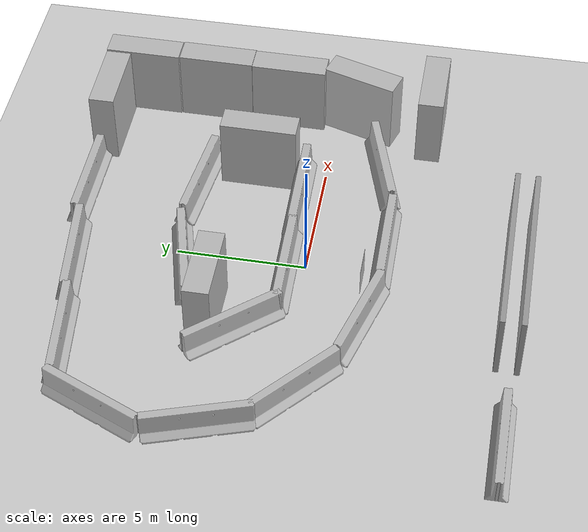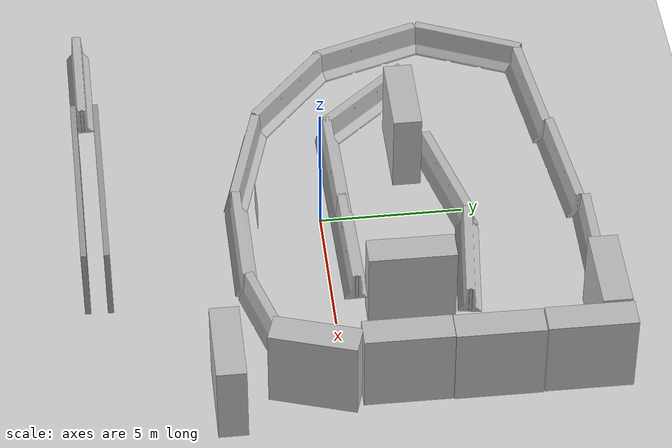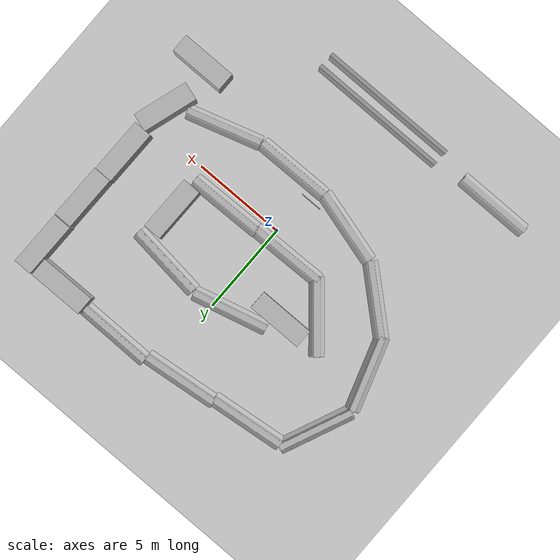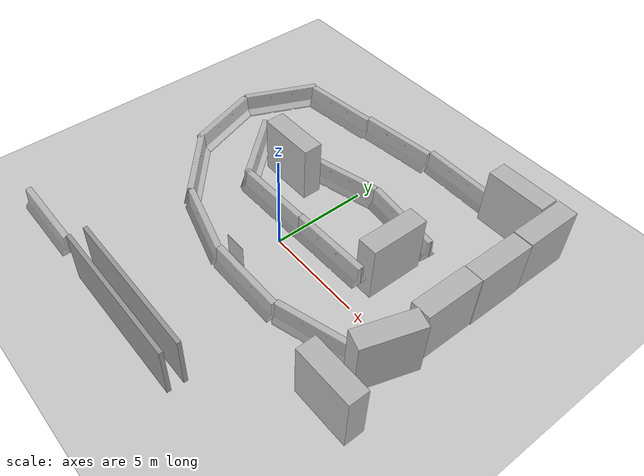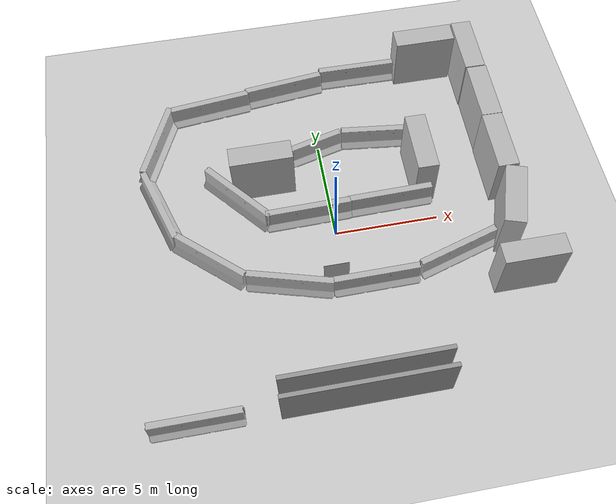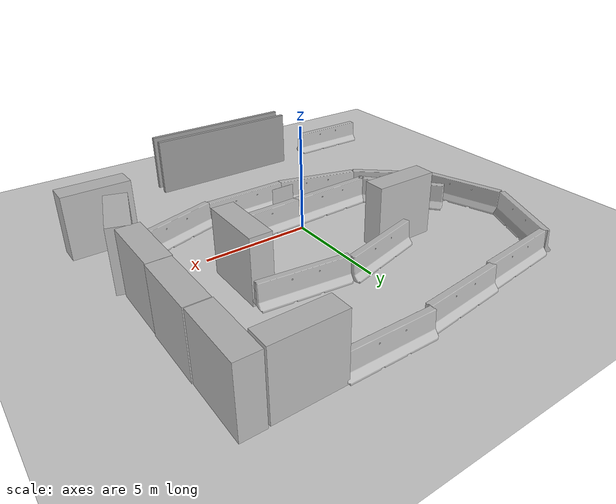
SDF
<sdf version="1.7">
 <world name="default">
  <light name="sun" type="directional">
   <pose>0 0 10 0 -0 0</pose>
   <diffuse>0.8 0.8 0.8 1</diffuse>
   <specular>0.2 0.2 0.2 1</specular>
   <attenuation>
    <range>1000</range>
    <constant>0.9</constant>
    <linear>0.01</linear>
    <quadratic>0.001</quadratic>
   </attenuation>
   <direction>-0.5 0.1 -0.9</direction>
   <spot><inner_angle>0</inner_angle><outer_angle>0</outer_angle><falloff>0</falloff></spot>
  </light>
  <model name="ground_plane">
   <static>1</static>
   <link name="link">
    <collision name="collision">
     <geometry><plane><normal>0 0 1</normal><size>100 100</size></plane></geometry>
     <surface>
      <contact><collide_bitmask>65535</collide_bitmask></contact>
      <friction><ode><mu>100</mu><mu2>50</mu2></ode></friction>
     </surface>
    </collision>
    <visual name="visual">
     <cast_shadows>0</cast_shadows>
     <geometry><plane><normal>0 0 1</normal><size>100 100</size></plane></geometry>
     <material>
      <script><uri>file://media/materials/scripts/gazebo.material</uri><name>Gazebo/Grey</name></script>
     </material>
    </visual>
   </link>
  </model>
  <gravity>0 0 -9.8</gravity>
  <magnetic_field>6e-06 2.3e-05 -4.2e-05</magnetic_field>
  <atmosphere type="adiabatic"/>
  <physics type="ode">
   <max_step_size>0.001</max_step_size>
   <real_time_factor>1</real_time_factor>
   <real_time_update_rate>1000</real_time_update_rate>
  </physics>
  <scene><ambient>0.4 0.4 0.4 1</ambient><background>0.7 0.7 0.7 1</background><shadows>1</shadows></scene>
  <spherical_coordinates>
   <surface_model>EARTH_WGS84</surface_model>
   <latitude_deg>0</latitude_deg>
   <longitude_deg>0</longitude_deg>
   <elevation>0</elevation>
   <heading_deg>0</heading_deg>
  </spherical_coordinates>
  <model name="grey_wall">
   <static>1</static>
   <link name="link">
    <pose>0 0 1.4 0 -0 0</pose>
    <collision name="collision"><geometry><box><size>7.5 0.2 2.8</size></box></geometry></collision>
    <visual name="visual">
     <cast_shadows>0</cast_shadows>
     <geometry><box><size>7.5 0.2 2.8</size></box></geometry>
     <material>
      <script>
       <uri>model://grey_wall/materials/scripts</uri>
       <uri>model://grey_wall/materials/textures</uri>
       <name>vrc/grey_wall</name>
      </script>
     </material>
    </visual>
   </link>
   <pose>-0.137893 -8.35678 0 0 -0 0</pose>
  </model>
  <model name="nist_maze_wall_120">
   <static>1</static>
   <link name="nist_maze_wall_120_link">
    <collision name="collision">
     <geometry>
      <mesh><uri>model://nist_maze_wall_120/meshes/nist_maze_wall_120.dae</uri><scale>1 1 1</scale></mesh>
     </geometry>
    </collision>
    <visual name="visual">
     <geometry>
      <mesh><uri>model://nist_maze_wall_120/meshes/nist_maze_wall_120.dae</uri><scale>1 1 1</scale></mesh>
     </geometry>
    </visual>
   </link>
   <pose>-0.370379 -2.82162 0 0 -0 0</pose>
  </model>
  <model name="brick_box_3x1x3">
   <static>1</static>
   <link name="chassis">
    <pose>0 0 1.5 0 -0 0</pose>
    <collision name="collision"><geometry><box><size>3 1 3</size></box></geometry></collision>
    <visual name="visual">
     <geometry><mesh><uri>model://brick_box_3x1x3/meshes/simple_box.dae</uri><scale>3 1 3</scale></mesh></geometry>
     <material>
      <script>
       <uri>model://brick_box_3x1x3/materials/scripts</uri>
       <uri>model://brick_box_3x1x3/materials/textures</uri>
       <name>BrickBox/Diffuse</name>
      </script>
     </material>
    </visual>
   </link>
   <pose>8.1491 -3.89878 0 0 -0 0</pose>
  </model>
  <model name="jersey_barrier">
   <static>1</static>
   <link name="link">
    <visual name="visual">
     <geometry><mesh><uri>model://jersey_barrier/meshes/jersey_barrier.dae</uri></mesh></geometry>
    </visual>
    <collision name="upright">
     <pose>0 0 0.5715 0 -0 0</pose>
     <geometry><box><size>4.06542 0.3063 1.143</size></box></geometry>
    </collision>
    <collision name="base">
     <pose>0 0 0.032258 0 -0 0</pose>
     <geometry><box><size>4.06542 0.8107 0.064516</size></box></geometry>
    </collision>
    <collision name="base2">
     <pose>0 0 0.1 0 -0 0</pose>
     <geometry><box><size>4.06542 0.65 0.1</size></box></geometry>
    </collision>
    <collision name="base3">
     <pose>0 0 0.2 0 -0 0</pose>
     <geometry><box><size>4.06542 0.5 0.1</size></box></geometry>
    </collision>
    <collision name="left-angle">
     <pose>0 -0.224 0.2401 0.9 -0 0</pose>
     <geometry><box><size>4.06542 0.5 0.064516</size></box></geometry>
    </collision>
    <collision name="right-angle">
     <pose>0 0.224 0.2401 -0.9 0 0</pose>
     <geometry><box><size>4.06542 0.5 0.064516</size></box></geometry>
    </collision>
   </link>
   <pose>-7.42941 -8.07411 0 0 -0 0</pose>
  </model>
  <model name="grey_wall_clone">
   <static>1</static>
   <link name="link">
    <pose>0 0 1.4 0 -0 0</pose>
    <collision name="collision"><geometry><box><size>7.5 0.2 2.8</size></box></geometry></collision>
    <visual name="visual">
     <cast_shadows>0</cast_shadows>
     <geometry><box><size>7.5 0.2 2.8</size></box></geometry>
     <material>
      <script>
       <uri>model://grey_wall/materials/scripts</uri>
       <uri>model://grey_wall/materials/textures</uri>
       <name>vrc/grey_wall</name>
      </script>
     </material>
    </visual>
   </link>
   <pose>-0.108574 -7.58211 0 0 -0 0</pose>
  </model>
  <model name="jersey_barrier_clone">
   <static>1</static>
   <link name="link">
    <visual name="visual">
     <geometry><mesh><uri>model://jersey_barrier/meshes/jersey_barrier.dae</uri></mesh></geometry>
    </visual>
    <collision name="upright">
     <pose>0 0 0.5715 0 -0 0</pose>
     <geometry><box><size>4.06542 0.3063 1.143</size></box></geometry>
    </collision>
    <collision name="base">
     <pose>0 0 0.032258 0 -0 0</pose>
     <geometry><box><size>4.06542 0.8107 0.064516</size></box></geometry>
    </collision>
    <collision name="base2">
     <pose>0 0 0.1 0 -0 0</pose>
     <geometry><box><size>4.06542 0.65 0.1</size></box></geometry>
    </collision>
    <collision name="base3">
     <pose>0 0 0.2 0 -0 0</pose>
     <geometry><box><size>4.06542 0.5 0.1</size></box></geometry>
    </collision>
    <collision name="left-angle">
     <pose>0 -0.224 0.2401 0.9 -0 0</pose>
     <geometry><box><size>4.06542 0.5 0.064516</size></box></geometry>
    </collision>
    <collision name="right-angle">
     <pose>0 0.224 0.2401 -0.9 0 0</pose>
     <geometry><box><size>4.06542 0.5 0.064516</size></box></geometry>
    </collision>
   </link>
   <pose>-6.07933 -0.567885 0 0 0 -0.723427</pose>
  </model>
  <model name="jersey_barrier_clone_0">
   <static>1</static>
   <link name="link">
    <visual name="visual">
     <geometry><mesh><uri>model://jersey_barrier/meshes/jersey_barrier.dae</uri></mesh></geometry>
    </visual>
    <collision name="upright">
     <pose>0 0 0.5715 0 -0 0</pose>
     <geometry><box><size>4.06542 0.3063 1.143</size></box></geometry>
    </collision>
    <collision name="base">
     <pose>0 0 0.032258 0 -0 0</pose>
     <geometry><box><size>4.06542 0.8107 0.064516</size></box></geometry>
    </collision>
    <collision name="base2">
     <pose>0 0 0.1 0 -0 0</pose>
     <geometry><box><size>4.06542 0.65 0.1</size></box></geometry>
    </collision>
    <collision name="base3">
     <pose>0 0 0.2 0 -0 0</pose>
     <geometry><box><size>4.06542 0.5 0.1</size></box></geometry>
    </collision>
    <collision name="left-angle">
     <pose>0 -0.224 0.2401 0.9 -0 0</pose>
     <geometry><box><size>4.06542 0.5 0.064516</size></box></geometry>
    </collision>
    <collision name="right-angle">
     <pose>0 0.224 0.2401 -0.9 0 0</pose>
     <geometry><box><size>4.06542 0.5 0.064516</size></box></geometry>
    </collision>
   </link>
   <pose>-4.31599 1.97803 0.852106 0 0 -0.863777</pose>
  </model>
  <model name="jersey_barrier_clone_clone">
   <static>1</static>
   <link name="link">
    <visual name="visual">
     <geometry><mesh><uri>model://jersey_barrier/meshes/jersey_barrier.dae</uri></mesh></geometry>
    </visual>
    <collision name="upright">
     <pose>0 0 0.5715 0 -0 0</pose>
     <geometry><box><size>4.06542 0.3063 1.143</size></box></geometry>
    </collision>
    <collision name="base">
     <pose>0 0 0.032258 0 -0 0</pose>
     <geometry><box><size>4.06542 0.8107 0.064516</size></box></geometry>
    </collision>
    <collision name="base2">
     <pose>0 0 0.1 0 -0 0</pose>
     <geometry><box><size>4.06542 0.65 0.1</size></box></geometry>
    </collision>
    <collision name="base3">
     <pose>0 0 0.2 0 -0 0</pose>
     <geometry><box><size>4.06542 0.5 0.1</size></box></geometry>
    </collision>
    <collision name="left-angle">
     <pose>0 -0.224 0.2401 0.9 -0 0</pose>
     <geometry><box><size>4.06542 0.5 0.064516</size></box></geometry>
    </collision>
    <collision name="right-angle">
     <pose>0 0.224 0.2401 -0.9 0 0</pose>
     <geometry><box><size>4.06542 0.5 0.064516</size></box></geometry>
    </collision>
   </link>
   <pose>1.37527 -2.90407 0 0 -0 0.007967</pose>
  </model>
  <model name="jersey_barrier_clone_clone_0">
   <static>1</static>
   <link name="link">
    <visual name="visual">
     <geometry><mesh><uri>model://jersey_barrier/meshes/jersey_barrier.dae</uri></mesh></geometry>
    </visual>
    <collision name="upright">
     <pose>0 0 0.5715 0 -0 0</pose>
     <geometry><box><size>4.06542 0.3063 1.143</size></box></geometry>
    </collision>
    <collision name="base">
     <pose>0 0 0.032258 0 -0 0</pose>
     <geometry><box><size>4.06542 0.8107 0.064516</size></box></geometry>
    </collision>
    <collision name="base2">
     <pose>0 0 0.1 0 -0 0</pose>
     <geometry><box><size>4.06542 0.65 0.1</size></box></geometry>
    </collision>
    <collision name="base3">
     <pose>0 0 0.2 0 -0 0</pose>
     <geometry><box><size>4.06542 0.5 0.1</size></box></geometry>
    </collision>
    <collision name="left-angle">
     <pose>0 -0.224 0.2401 0.9 -0 0</pose>
     <geometry><box><size>4.06542 0.5 0.064516</size></box></geometry>
    </collision>
    <collision name="right-angle">
     <pose>0 0.224 0.2401 -0.9 0 0</pose>
     <geometry><box><size>4.06542 0.5 0.064516</size></box></geometry>
    </collision>
   </link>
   <pose>-2.57025 -2.4226 0 0 0 -0.273786</pose>
  </model>
  <model name="jersey_barrier_clone_clone_1">
   <static>1</static>
   <link name="link">
    <visual name="visual">
     <geometry><mesh><uri>model://jersey_barrier/meshes/jersey_barrier.dae</uri></mesh></geometry>
    </visual>
    <collision name="upright">
     <pose>0 0 0.5715 0 -0 0</pose>
     <geometry><box><size>4.06542 0.3063 1.143</size></box></geometry>
    </collision>
    <collision name="base">
     <pose>0 0 0.032258 0 -0 0</pose>
     <geometry><box><size>4.06542 0.8107 0.064516</size></box></geometry>
    </collision>
    <collision name="base2">
     <pose>0 0 0.1 0 -0 0</pose>
     <geometry><box><size>4.06542 0.65 0.1</size></box></geometry>
    </collision>
    <collision name="base3">
     <pose>0 0 0.2 0 -0 0</pose>
     <geometry><box><size>4.06542 0.5 0.1</size></box></geometry>
    </collision>
    <collision name="left-angle">
     <pose>0 -0.224 0.2401 0.9 -0 0</pose>
     <geometry><box><size>4.06542 0.5 0.064516</size></box></geometry>
    </collision>
    <collision name="right-angle">
     <pose>0 0.224 0.2401 -0.9 0 0</pose>
     <geometry><box><size>4.06542 0.5 0.064516</size></box></geometry>
    </collision>
   </link>
   <pose>-8.14353 2.50723 0 0 0 -1.25735</pose>
  </model>
  <model name="jersey_barrier_clone_clone_1_clone">
   <static>1</static>
   <link name="link">
    <visual name="visual">
     <geometry><mesh><uri>model://jersey_barrier/meshes/jersey_barrier.dae</uri></mesh></geometry>
    </visual>
    <collision name="upright">
     <pose>0 0 0.5715 0 -0 0</pose>
     <geometry><box><size>4.06542 0.3063 1.143</size></box></geometry>
    </collision>
    <collision name="base">
     <pose>0 0 0.032258 0 -0 0</pose>
     <geometry><box><size>4.06542 0.8107 0.064516</size></box></geometry>
    </collision>
    <collision name="base2">
     <pose>0 0 0.1 0 -0 0</pose>
     <geometry><box><size>4.06542 0.65 0.1</size></box></geometry>
    </collision>
    <collision name="base3">
     <pose>0 0 0.2 0 -0 0</pose>
     <geometry><box><size>4.06542 0.5 0.1</size></box></geometry>
    </collision>
    <collision name="left-angle">
     <pose>0 -0.224 0.2401 0.9 -0 0</pose>
     <geometry><box><size>4.06542 0.5 0.064516</size></box></geometry>
    </collision>
    <collision name="right-angle">
     <pose>0 0.224 0.2401 -0.9 0 0</pose>
     <geometry><box><size>4.06542 0.5 0.064516</size></box></geometry>
    </collision>
   </link>
   <pose>-7.98798 6.33797 0 0 0 -1.98155</pose>
  </model>
  <model name="jersey_barrier_clone_clone_1_clone_clone">
   <static>1</static>
   <link name="link">
    <visual name="visual">
     <geometry><mesh><uri>model://jersey_barrier/meshes/jersey_barrier.dae</uri></mesh></geometry>
    </visual>
    <collision name="upright">
     <pose>0 0 0.5715 0 -0 0</pose>
     <geometry><box><size>4.06542 0.3063 1.143</size></box></geometry>
    </collision>
    <collision name="base">
     <pose>0 0 0.032258 0 -0 0</pose>
     <geometry><box><size>4.06542 0.8107 0.064516</size></box></geometry>
    </collision>
    <collision name="base2">
     <pose>0 0 0.1 0 -0 0</pose>
     <geometry><box><size>4.06542 0.65 0.1</size></box></geometry>
    </collision>
    <collision name="base3">
     <pose>0 0 0.2 0 -0 0</pose>
     <geometry><box><size>4.06542 0.5 0.1</size></box></geometry>
    </collision>
    <collision name="left-angle">
     <pose>0 -0.224 0.2401 0.9 -0 0</pose>
     <geometry><box><size>4.06542 0.5 0.064516</size></box></geometry>
    </collision>
    <collision name="right-angle">
     <pose>0 0.224 0.2401 -0.9 0 0</pose>
     <geometry><box><size>4.06542 0.5 0.064516</size></box></geometry>
    </collision>
   </link>
   <pose>-5.11097 8.25684 0 0 0 -3.03069</pose>
  </model>
  <model name="jersey_barrier_clone_0_clone_clone">
   <static>1</static>
   <link name="link">
    <visual name="visual">
     <geometry><mesh><uri>model://jersey_barrier/meshes/jersey_barrier.dae</uri></mesh></geometry>
    </visual>
    <collision name="upright">
     <pose>0 0 0.5715 0 -0 0</pose>
     <geometry><box><size>4.06542 0.3063 1.143</size></box></geometry>
    </collision>
    <collision name="base">
     <pose>0 0 0.032258 0 -0 0</pose>
     <geometry><box><size>4.06542 0.8107 0.064516</size></box></geometry>
    </collision>
    <collision name="base2">
     <pose>0 0 0.1 0 -0 0</pose>
     <geometry><box><size>4.06542 0.65 0.1</size></box></geometry>
    </collision>
    <collision name="base3">
     <pose>0 0 0.2 0 -0 0</pose>
     <geometry><box><size>4.06542 0.5 0.1</size></box></geometry>
    </collision>
    <collision name="left-angle">
     <pose>0 -0.224 0.2401 0.9 -0 0</pose>
     <geometry><box><size>4.06542 0.5 0.064516</size></box></geometry>
    </collision>
    <collision name="right-angle">
     <pose>0 0.224 0.2401 -0.9 0 0</pose>
     <geometry><box><size>4.06542 0.5 0.064516</size></box></geometry>
    </collision>
   </link>
   <pose>-0.826896 4.57255 0.155446 0 -0 0.251883</pose>
  </model>
  <model name="jersey_barrier_clone_clone_1_clone_clone_clone">
   <static>1</static>
   <link name="link">
    <visual name="visual">
     <geometry><mesh><uri>model://jersey_barrier/meshes/jersey_barrier.dae</uri></mesh></geometry>
    </visual>
    <collision name="upright">
     <pose>0 0 0.5715 0 -0 0</pose>
     <geometry><box><size>4.06542 0.3063 1.143</size></box></geometry>
    </collision>
    <collision name="base">
     <pose>0 0 0.032258 0 -0 0</pose>
     <geometry><box><size>4.06542 0.8107 0.064516</size></box></geometry>
    </collision>
    <collision name="base2">
     <pose>0 0 0.1 0 -0 0</pose>
     <geometry><box><size>4.06542 0.65 0.1</size></box></geometry>
    </collision>
    <collision name="base3">
     <pose>0 0 0.2 0 -0 0</pose>
     <geometry><box><size>4.06542 0.5 0.1</size></box></geometry>
    </collision>
    <collision name="left-angle">
     <pose>0 -0.224 0.2401 0.9 -0 0</pose>
     <geometry><box><size>4.06542 0.5 0.064516</size></box></geometry>
    </collision>
    <collision name="right-angle">
     <pose>0 0.224 0.2401 -0.9 0 0</pose>
     <geometry><box><size>4.06542 0.5 0.064516</size></box></geometry>
    </collision>
   </link>
   <pose>-1.19028 8.81556 0 0 0 -3.03069</pose>
  </model>
  <model name="jersey_barrier_clone_clone_1_clone_clone_clone_0">
   <static>1</static>
   <link name="link">
    <visual name="visual">
     <geometry><mesh><uri>model://jersey_barrier/meshes/jersey_barrier.dae</uri></mesh></geometry>
    </visual>
    <collision name="upright">
     <pose>0 0 0.5715 0 -0 0</pose>
     <geometry><box><size>4.06542 0.3063 1.143</size></box></geometry>
    </collision>
    <collision name="base">
     <pose>0 0 0.032258 0 -0 0</pose>
     <geometry><box><size>4.06542 0.8107 0.064516</size></box></geometry>
    </collision>
    <collision name="base2">
     <pose>0 0 0.1 0 -0 0</pose>
     <geometry><box><size>4.06542 0.65 0.1</size></box></geometry>
    </collision>
    <collision name="base3">
     <pose>0 0 0.2 0 -0 0</pose>
     <geometry><box><size>4.06542 0.5 0.1</size></box></geometry>
    </collision>
    <collision name="left-angle">
     <pose>0 -0.224 0.2401 0.9 -0 0</pose>
     <geometry><box><size>4.06542 0.5 0.064516</size></box></geometry>
    </collision>
    <collision name="right-angle">
     <pose>0 0.224 0.2401 -0.9 0 0</pose>
     <geometry><box><size>4.06542 0.5 0.064516</size></box></geometry>
    </collision>
   </link>
   <pose>2.81754 9.23343 0 0 -0 3.13266</pose>
  </model>
  <model name="jersey_barrier_clone_0_clone_clone_clone">
   <static>1</static>
   <link name="link">
    <visual name="visual">
     <geometry><mesh><uri>model://jersey_barrier/meshes/jersey_barrier.dae</uri></mesh></geometry>
    </visual>
    <collision name="upright">
     <pose>0 0 0.5715 0 -0 0</pose>
     <geometry><box><size>4.06542 0.3063 1.143</size></box></geometry>
    </collision>
    <collision name="base">
     <pose>0 0 0.032258 0 -0 0</pose>
     <geometry><box><size>4.06542 0.8107 0.064516</size></box></geometry>
    </collision>
    <collision name="base2">
     <pose>0 0 0.1 0 -0 0</pose>
     <geometry><box><size>4.06542 0.65 0.1</size></box></geometry>
    </collision>
    <collision name="base3">
     <pose>0 0 0.2 0 -0 0</pose>
     <geometry><box><size>4.06542 0.5 0.1</size></box></geometry>
    </collision>
    <collision name="left-angle">
     <pose>0 -0.224 0.2401 0.9 -0 0</pose>
     <geometry><box><size>4.06542 0.5 0.064516</size></box></geometry>
    </collision>
    <collision name="right-angle">
     <pose>0 0.224 0.2401 -0.9 0 0</pose>
     <geometry><box><size>4.06542 0.5 0.064516</size></box></geometry>
    </collision>
   </link>
   <pose>3.21051 4.78189 0.262888 0 0 -0.114507</pose>
  </model>
  <model name="brick_box_3x1x3_clone">
   <static>1</static>
   <link name="chassis">
    <pose>0 0 1.5 0 -0 0</pose>
    <collision name="collision"><geometry><box><size>3 1 3</size></box></geometry></collision>
    <visual name="visual">
     <geometry><mesh><uri>model://brick_box_3x1x3/meshes/simple_box.dae</uri><scale>3 1 3</scale></mesh></geometry>
     <material>
      <script>
       <uri>model://brick_box_3x1x3/materials/scripts</uri>
       <uri>model://brick_box_3x1x3/materials/textures</uri>
       <name>BrickBox/Diffuse</name>
      </script>
     </material>
    </visual>
   </link>
   <pose>6.25051 9.03188 0 0 -0 0</pose>
  </model>
  <model name="brick_box_3x1x3_clone_0">
   <static>1</static>
   <link name="chassis">
    <pose>0 0 1.5 0 -0 0</pose>
    <collision name="collision"><geometry><box><size>3 1 3</size></box></geometry></collision>
    <visual name="visual">
     <geometry><mesh><uri>model://brick_box_3x1x3/meshes/simple_box.dae</uri><scale>3 1 3</scale></mesh></geometry>
     <material>
      <script>
       <uri>model://brick_box_3x1x3/materials/scripts</uri>
       <uri>model://brick_box_3x1x3/materials/textures</uri>
       <name>BrickBox/Diffuse</name>
      </script>
     </material>
    </visual>
   </link>
   <pose>8.32767 8.05812 0 0 0 -1.57877</pose>
  </model>
  <model name="brick_box_3x1x3_clone_0_clone">
   <static>1</static>
   <link name="chassis">
    <pose>0 0 1.5 0 -0 0</pose>
    <collision name="collision"><geometry><box><size>3 1 3</size></box></geometry></collision>
    <visual name="visual">
     <geometry><mesh><uri>model://brick_box_3x1x3/meshes/simple_box.dae</uri><scale>3 1 3</scale></mesh></geometry>
     <material>
      <script>
       <uri>model://brick_box_3x1x3/materials/scripts</uri>
       <uri>model://brick_box_3x1x3/materials/textures</uri>
       <name>BrickBox/Diffuse</name>
      </script>
     </material>
    </visual>
   </link>
   <pose>8.33295 5.01816 0 0 0 -1.57877</pose>
  </model>
  <model name="brick_box_3x1x3_clone_0_clone_0">
   <static>1</static>
   <link name="chassis">
    <pose>0 0 1.5 0 -0 0</pose>
    <collision name="collision"><geometry><box><size>3 1 3</size></box></geometry></collision>
    <visual name="visual">
     <geometry><mesh><uri>model://brick_box_3x1x3/meshes/simple_box.dae</uri><scale>3 1 3</scale></mesh></geometry>
     <material>
      <script>
       <uri>model://brick_box_3x1x3/materials/scripts</uri>
       <uri>model://brick_box_3x1x3/materials/textures</uri>
       <name>BrickBox/Diffuse</name>
      </script>
     </material>
    </visual>
   </link>
   <pose>8.27867 2.00615 0 0 0 -1.57877</pose>
  </model>
  <model name="brick_box_3x1x3_clone_0_clone_1">
   <static>1</static>
   <link name="chassis">
    <pose>0 0 1.5 0 -0 0</pose>
    <collision name="collision"><geometry><box><size>3 1 3</size></box></geometry></collision>
    <visual name="visual">
     <geometry><mesh><uri>model://brick_box_3x1x3/meshes/simple_box.dae</uri><scale>3 1 3</scale></mesh></geometry>
     <material>
      <script>
       <uri>model://brick_box_3x1x3/materials/scripts</uri>
       <uri>model://brick_box_3x1x3/materials/textures</uri>
       <name>BrickBox/Diffuse</name>
      </script>
     </material>
    </visual>
   </link>
   <pose>4.60276 2.58858 0 0 0 -1.57877</pose>
  </model>
  <model name="jersey_barrier_clone_0_clone_0">
   <static>1</static>
   <link name="link">
    <visual name="visual">
     <geometry><mesh><uri>model://jersey_barrier/meshes/jersey_barrier.dae</uri></mesh></geometry>
    </visual>
    <collision name="upright">
     <pose>0 0 0.5715 0 -0 0</pose>
     <geometry><box><size>4.06542 0.3063 1.143</size></box></geometry>
    </collision>
    <collision name="base">
     <pose>0 0 0.032258 0 -0 0</pose>
     <geometry><box><size>4.06542 0.8107 0.064516</size></box></geometry>
    </collision>
    <collision name="base2">
     <pose>0 0 0.1 0 -0 0</pose>
     <geometry><box><size>4.06542 0.65 0.1</size></box></geometry>
    </collision>
    <collision name="base3">
     <pose>0 0 0.2 0 -0 0</pose>
     <geometry><box><size>4.06542 0.5 0.1</size></box></geometry>
    </collision>
    <collision name="left-angle">
     <pose>0 -0.224 0.2401 0.9 -0 0</pose>
     <geometry><box><size>4.06542 0.5 0.064516</size></box></geometry>
    </collision>
    <collision name="right-angle">
     <pose>0 0.224 0.2401 -0.9 0 0</pose>
     <geometry><box><size>4.06542 0.5 0.064516</size></box></geometry>
    </collision>
   </link>
   <pose>-1.19976 0.591108 0.852106 0 -0 0.018529</pose>
  </model>
  <model name="jersey_barrier_clone_0_clone_1">
   <static>1</static>
   <link name="link">
    <visual name="visual">
     <geometry><mesh><uri>model://jersey_barrier/meshes/jersey_barrier.dae</uri></mesh></geometry>
    </visual>
    <collision name="upright">
     <pose>0 0 0.5715 0 -0 0</pose>
     <geometry><box><size>4.06542 0.3063 1.143</size></box></geometry>
    </collision>
    <collision name="base">
     <pose>0 0 0.032258 0 -0 0</pose>
     <geometry><box><size>4.06542 0.8107 0.064516</size></box></geometry>
    </collision>
    <collision name="base2">
     <pose>0 0 0.1 0 -0 0</pose>
     <geometry><box><size>4.06542 0.65 0.1</size></box></geometry>
    </collision>
    <collision name="base3">
     <pose>0 0 0.2 0 -0 0</pose>
     <geometry><box><size>4.06542 0.5 0.1</size></box></geometry>
    </collision>
    <collision name="left-angle">
     <pose>0 -0.224 0.2401 0.9 -0 0</pose>
     <geometry><box><size>4.06542 0.5 0.064516</size></box></geometry>
    </collision>
    <collision name="right-angle">
     <pose>0 0.224 0.2401 -0.9 0 0</pose>
     <geometry><box><size>4.06542 0.5 0.064516</size></box></geometry>
    </collision>
   </link>
   <pose>5.37828 -2.24326 0.103739 0 -0 0.295021</pose>
  </model>
  <model name="brick_box_3x1x3_clone_0_clone_0_clone">
   <static>1</static>
   <link name="chassis">
    <pose>0 0 1.5 0 -0 0</pose>
    <collision name="collision"><geometry><box><size>3 1 3</size></box></geometry></collision>
    <visual name="visual">
     <geometry><mesh><uri>model://brick_box_3x1x3/meshes/simple_box.dae</uri><scale>3 1 3</scale></mesh></geometry>
     <material>
      <script>
       <uri>model://brick_box_3x1x3/materials/scripts</uri>
       <uri>model://brick_box_3x1x3/materials/textures</uri>
       <name>BrickBox/Diffuse</name>
      </script>
     </material>
    </visual>
   </link>
   <pose>8.13731 -1.0283 0 0 0 -1.87773</pose>
  </model>
  <model name="jersey_barrier_clone_0_clone_0_clone">
   <static>1</static>
   <link name="link">
    <visual name="visual">
     <geometry><mesh><uri>model://jersey_barrier/meshes/jersey_barrier.dae</uri></mesh></geometry>
    </visual>
    <collision name="upright">
     <pose>0 0 0.5715 0 -0 0</pose>
     <geometry><box><size>4.06542 0.3063 1.143</size></box></geometry>
    </collision>
    <collision name="base">
     <pose>0 0 0.032258 0 -0 0</pose>
     <geometry><box><size>4.06542 0.8107 0.064516</size></box></geometry>
    </collision>
    <collision name="base2">
     <pose>0 0 0.1 0 -0 0</pose>
     <geometry><box><size>4.06542 0.65 0.1</size></box></geometry>
    </collision>
    <collision name="base3">
     <pose>0 0 0.2 0 -0 0</pose>
     <geometry><box><size>4.06542 0.5 0.1</size></box></geometry>
    </collision>
    <collision name="left-angle">
     <pose>0 -0.224 0.2401 0.9 -0 0</pose>
     <geometry><box><size>4.06542 0.5 0.064516</size></box></geometry>
    </collision>
    <collision name="right-angle">
     <pose>0 0.224 0.2401 -0.9 0 0</pose>
     <geometry><box><size>4.06542 0.5 0.064516</size></box></geometry>
    </collision>
   </link>
   <pose>2.72276 0.691406 0.852106 0 -0 0.018529</pose>
  </model>
  <model name="brick_box_3x1x3_clone_1">
   <static>1</static>
   <link name="chassis">
    <pose>0 0 1.5 0 -0 0</pose>
    <collision name="collision"><geometry><box><size>3 1 3</size></box></geometry></collision>
    <visual name="visual">
     <geometry><mesh><uri>model://brick_box_3x1x3/meshes/simple_box.dae</uri><scale>3 1 3</scale></mesh></geometry>
     <material>
      <script>
       <uri>model://brick_box_3x1x3/materials/scripts</uri>
       <uri>model://brick_box_3x1x3/materials/textures</uri>
       <name>BrickBox/Diffuse</name>
      </script>
     </material>
    </visual>
   </link>
   <pose>-3.01253 3.24339 0 0 -0 0</pose>
  </model>
 </world>
</sdf>
